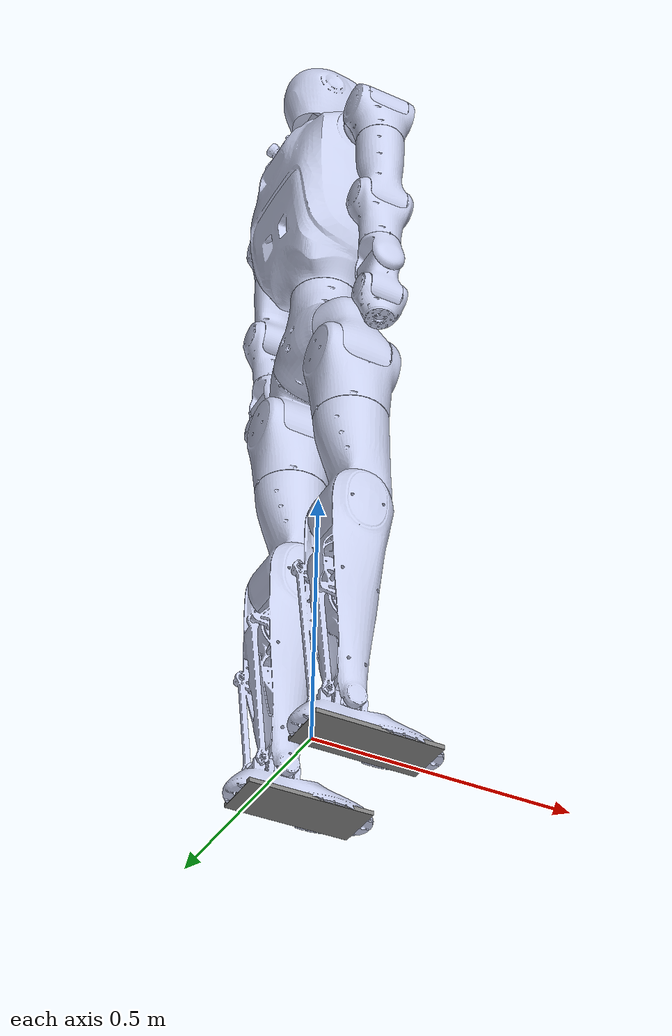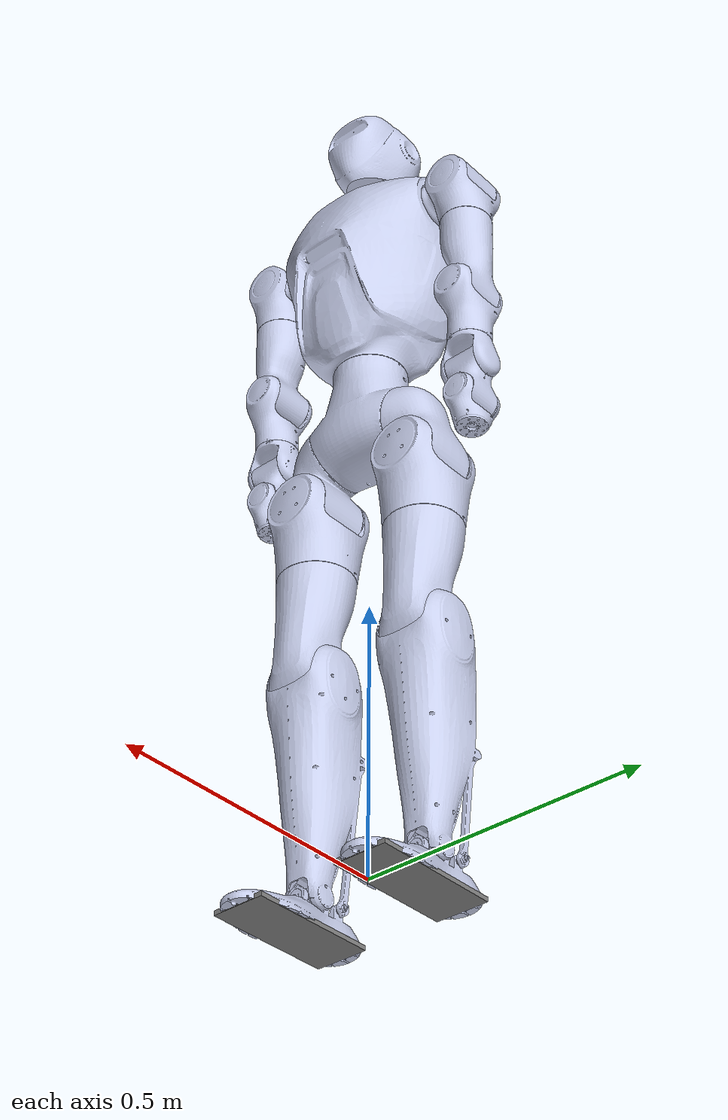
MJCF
<mujoco model="TH010-500 可拖拽外发模型(URDF)20260410">
  <compiler angle="radian" />
  <asset>
    <mesh name="base_hip_link" content_type="model/stl" file="../meshes/base_hip_link.STL" />
    <mesh name="left_hip_pitch_link" content_type="model/stl" file="../meshes/left_hip_pitch_link.STL" />
    <mesh name="left_hip_roll_link" content_type="model/stl" file="../meshes/left_hip_roll_link.STL" />
    <mesh name="left_hip_yaw_link" content_type="model/stl" file="../meshes/left_hip_yaw_link.STL" />
    <mesh name="left_knee_link" content_type="model/stl" file="../meshes/left_knee_link.STL" />
    <mesh name="left_ankle_pitch_link" content_type="model/stl" file="../meshes/left_ankle_pitch_link.STL" />
    <mesh name="left_ankle_roll_link" content_type="model/stl" file="../meshes/left_ankle_roll_link.STL" />
    <mesh name="right_hip_pitch_link" content_type="model/stl" file="../meshes/right_hip_pitch_link.STL" />
    <mesh name="right_hip_roll_link" content_type="model/stl" file="../meshes/right_hip_roll_link.STL" />
    <mesh name="right_hip_yaw_link" content_type="model/stl" file="../meshes/right_hip_yaw_link.STL" />
    <mesh name="right_knee_link" content_type="model/stl" file="../meshes/right_knee_link.STL" />
    <mesh name="right_ankle_pitch_link" content_type="model/stl" file="../meshes/right_ankle_pitch_link.STL" />
    <mesh name="right_ankle_roll_link" content_type="model/stl" file="../meshes/right_ankle_roll_link.STL" />
    <mesh name="waist_yaw_link" content_type="model/stl" file="../meshes/waist_yaw_link.STL" />
    <mesh name="head_yaw_link" content_type="model/stl" file="../meshes/head_yaw_link.STL" />
    <mesh name="head_pitch_link" content_type="model/stl" file="../meshes/head_pitch_link.STL" />
    <mesh name="left_shoulder_pitch_link" content_type="model/stl" file="../meshes/left_shoulder_pitch_link.STL" />
    <mesh name="left_shoulder_roll_link" content_type="model/stl" file="../meshes/left_shoulder_roll_link.STL" />
    <mesh name="left_shoulder_yaw_link" content_type="model/stl" file="../meshes/left_shoulder_yaw_link.STL" />
    <mesh name="left_elbow_link" content_type="model/stl" file="../meshes/left_elbow_link.STL" />
    <mesh name="left_wrist_yaw_link" content_type="model/stl" file="../meshes/left_wrist_yaw_link.STL" />
    <mesh name="left_wrist_pitch_link" content_type="model/stl" file="../meshes/left_wrist_pitch_link.STL" />
    <mesh name="left_wrist_roll_link" content_type="model/stl" file="../meshes/left_wrist_roll_link.STL" />
    <mesh name="right_shoulder_pitch_link" content_type="model/stl" file="../meshes/right_shoulder_pitch_link.STL" />
    <mesh name="right_shoulder_roll_link" content_type="model/stl" file="../meshes/right_shoulder_roll_link.STL" />
    <mesh name="right_shoulder_yaw_link" content_type="model/stl" file="../meshes/right_shoulder_yaw_link.STL" />
    <mesh name="right_elbow_link" content_type="model/stl" file="../meshes/right_elbow_link.STL" />
    <mesh name="right_wrist_yaw_link" content_type="model/stl" file="../meshes/right_wrist_yaw_link.STL" />
    <mesh name="right_wrist_pitch_link" content_type="model/stl" file="../meshes/right_wrist_pitch_link.STL" />
    <mesh name="right_wrist_roll_link" content_type="model/stl" file="../meshes/right_wrist_roll_link.STL" />
    <material name="grey_plastic" rgba="0.79216 0.81961 0.93333 1" />
    <material name="default_material" rgba="0.7 0.7 0.7 1" />
    <material name="collision_material" rgba="1.0 0.28 0.1 0.9" />
  </asset>
  <worldbody>
    <body name="base_hip_link" pos="0.00000000 0.00000000 0.81159019" quat="1 0 0 0">
      <freejoint name="floating_base" />
      <geom type="mesh" rgba="0.79216 0.81961 0.93333 1" mesh="base_hip_link" contype="0" conaffinity="0" />
      <body name="left_hip_pitch_link" pos="0.0021 0.11845 0.025261" quat="0.991445 -0.130526 0 0">
        <inertial pos="0.007814 0.020187 -0.081484" quat="0.706832 0.102853 -0.187116 0.674386" mass="2.852" diaginertia="0.00616865 0.00577245 0.0028269" />
        <joint name="left_hip_pitch_joint" pos="0 0 0" axis="0 1 0" range="-2.094 1.4486" actuatorfrcrange="-240 240" ref="0.0" damping="0.05" armature="0.01" frictionloss="0.2" />
        <geom type="mesh" rgba="0.79216 0.81961 0.93333 1" mesh="left_hip_pitch_link" contype="0" conaffinity="0" />
        <body name="left_hip_roll_link" pos="0 0.025455 -0.095" quat="0.991445 0.130526 0 0">
          <inertial pos="-0.001319 3.4e-05 -0.096883" quat="0.703703 0.0542279 0.0556398 0.706234" mass="3.047" diaginertia="0.00855803 0.0071389 0.00510006" />
          <joint name="left_hip_roll_joint" pos="0 0 0" axis="1 0 0" range="-1.222 1.536" actuatorfrcrange="-240 240" ref="0.0" damping="0.05" armature="0.01" frictionloss="0.2" />
          <geom type="mesh" rgba="0.79216 0.81961 0.93333 1" mesh="left_hip_roll_link" contype="0" conaffinity="0" />
          <body name="left_hip_yaw_link" pos="0 0 -0.1385">
            <inertial pos="0.004891 -0.004006 -0.166637" quat="0.934086 -0.00659501 0.023608 0.356206" mass="3.408" diaginertia="0.0189691 0.0187872 0.00383766" />
            <joint name="left_hip_yaw_joint" pos="0 0 0" axis="0 0 1" range="-0.8378 0.8378" actuatorfrcrange="-240 240" ref="0.0" damping="0.05" armature="0.01" frictionloss="0.2" />
            <geom type="mesh" rgba="0.79216 0.81961 0.93333 1" mesh="left_hip_yaw_link" contype="0" conaffinity="0" />
            <body name="left_knee_link" pos="0 0 -0.21">
              <inertial pos="-0.013728 -0.001138 -0.163269" quat="0.961064 0.0135708 0.0366739 -0.273544" mass="4.461" diaginertia="0.0372391 0.0367241 0.00577385" />
              <joint name="left_knee_joint" pos="0 0 0" axis="0 1 0" range="-0.0873 2.0944" actuatorfrcrange="-204 204" ref="0.0" damping="0.05" armature="0.01" frictionloss="0.2" />
              <geom type="mesh" rgba="0.79216 0.81961 0.93333 1" mesh="left_knee_link" contype="0" conaffinity="0" />
              <body name="left_ankle_pitch_link" pos="0 0 -0.39">
                <inertial pos="0 0 0.001331" quat="0.5 0.5 -0.5 0.5" mass="0.239" diaginertia="9.8e-05 6e-05 6e-05" />
                <joint name="left_ankle_pitch_joint" pos="0 0 0" axis="0 1 0" range="-0.65 0.42" actuatorfrcrange="-104 104" ref="0.0" damping="0.05" armature="0.01" frictionloss="0.2" />
                <geom type="mesh" rgba="0.79216 0.81961 0.93333 1" mesh="left_ankle_pitch_link" contype="0" conaffinity="0" />
                <body name="left_ankle_roll_link">
                  <inertial pos="0.011512 0 -0.038293" quat="0 0.736833 0 0.676075" mass="1.153" diaginertia="0.005445 0.005014 0.000966999" />
                  <joint name="left_ankle_roll_joint" pos="0 0 0" axis="1 0 0" range="-0.1 0.1" actuatorfrcrange="-104 104" ref="0.0" damping="0.05" armature="0.01" frictionloss="0.2" />
                  <geom type="mesh" rgba="0.79216 0.81961 0.93333 1" mesh="left_ankle_roll_link" contype="0" conaffinity="0" />
                  <geom name="left_foot_contact" type="box" size="0.115 0.048 0.004" pos="0.037 0 -0.060" contype="0" conaffinity="1" condim="3" friction="2.0 0.5 0.1" solref="0.005 1" solimp="0.99 0.999 1e-05" group="1" />
                </body>
              </body>
            </body>
          </body>
        </body>
      </body>
      <body name="right_hip_pitch_link" pos="0.0021 -0.11845 0.025261" quat="0.991445 0.130526 0 0">
        <inertial pos="0.007826 -0.020207 -0.081455" quat="0.673714 -0.1877 0.102836 0.707321" mass="2.849" diaginertia="0.00616422 0.00576726 0.00282352" />
        <joint name="right_hip_pitch_joint" pos="0 0 0" axis="0 1 0" range="-2.094 1.4486" actuatorfrcrange="-240 240" ref="0.0" damping="0.05" armature="0.01" frictionloss="0.2" />
        <geom type="mesh" rgba="0.79216 0.81961 0.93333 1" mesh="right_hip_pitch_link" contype="0" conaffinity="0" />
        <body name="right_hip_roll_link" pos="0 -0.025455 -0.095" quat="0.991445 -0.130526 0 0">
          <inertial pos="-0.001319 -2.8e-05 -0.096883" quat="0.706449 0.0557412 0.0541286 0.703486" mass="3.047" diaginertia="0.00855805 0.0071389 0.00510006" />
          <joint name="right_hip_roll_joint" pos="0 0 0" axis="1 0 0" range="-1.536 1.222" actuatorfrcrange="-240 240" ref="0.0" damping="0.05" armature="0.01" frictionloss="0.2" />
          <geom type="mesh" rgba="0.79216 0.81961 0.93333 1" mesh="right_hip_roll_link" contype="0" conaffinity="0" />
          <body name="right_hip_yaw_link" pos="0 0 -0.1385">
            <inertial pos="0.004904 0.004006 -0.166653" quat="0.935017 0.00668372 0.023581 -0.353755" mass="3.408" diaginertia="0.0189803 0.0187981 0.00383563" />
            <joint name="right_hip_yaw_joint" pos="0 0 0" axis="0 0 1" range="-0.8378 0.8378" actuatorfrcrange="-240 240" ref="0.0" damping="0.05" armature="0.01" frictionloss="0.2" />
            <geom type="mesh" rgba="0.79216 0.81961 0.93333 1" mesh="right_hip_yaw_link" contype="0" conaffinity="0" />
            <body name="right_knee_link" pos="0 0 -0.21">
              <inertial pos="-0.01374 0.001133 -0.163265" quat="0.961167 -0.0135158 0.0367313 0.273178" mass="4.461" diaginertia="0.0372421 0.0367244 0.0057755" />
              <joint name="right_knee_joint" pos="0 0 0" axis="0 1 0" range="-0.0873 2.0944" actuatorfrcrange="-240 240" ref="0.0" damping="0.05" armature="0.01" frictionloss="0.2" />
              <geom type="mesh" rgba="0.79216 0.81961 0.93333 1" mesh="right_knee_link" contype="0" conaffinity="0" />
              <body name="right_ankle_pitch_link" pos="0 0 -0.39">
                <inertial pos="0 0 0.001331" quat="0.5 0.5 -0.5 0.5" mass="0.239" diaginertia="9.8e-05 6e-05 6e-05" />
                <joint name="right_ankle_pitch_joint" pos="0 0 0" axis="0 1 0" range="-0.65 0.42" actuatorfrcrange="-104 104" ref="0.0" damping="0.05" armature="0.01" frictionloss="0.2" />
                <geom type="mesh" rgba="0.79216 0.81961 0.93333 1" mesh="right_ankle_pitch_link" contype="0" conaffinity="0" />
                <body name="right_ankle_roll_link">
                  <inertial pos="0.011512 0 -0.038293" quat="0 0.736833 0 0.676075" mass="1.153" diaginertia="0.005445 0.005014 0.000966999" />
                  <joint name="right_ankle_roll_joint" pos="0 0 0" axis="1 0 0" range="-0.1 0.1" actuatorfrcrange="-104 104" ref="0.0" damping="0.05" armature="0.01" frictionloss="0.2" />
                  <geom type="mesh" rgba="0.79216 0.81961 0.93333 1" mesh="right_ankle_roll_link" contype="0" conaffinity="0" />
                  <geom name="right_foot_contact" type="box" size="0.115 0.048 0.004" pos="0.037 0 -0.060" contype="0" conaffinity="1" condim="3" friction="2.0 0.5 0.1" solref="0.005 1" solimp="0.99 0.999 1e-05" group="1" />
                </body>
              </body>
            </body>
          </body>
        </body>
      </body>
      <body name="waist_yaw_link" pos="0.0021 0 0.1925">
        <inertial pos="-0.0189468 0.00011324 0.209733" quat="0.693715 -0.0855718 -0.0852003 0.710054" mass="15.7439" diaginertia="0.316013 0.28994 0.179785" />
        <joint name="waist_yaw_joint" pos="0 0 0" axis="0 0 1" range="-2.8797 2.8797" actuatorfrcrange="-102 102" ref="0.0" damping="0.05" armature="0.01" frictionloss="0.2" />
        <geom type="mesh" rgba="0.79216 0.81961 0.93333 1" mesh="waist_yaw_link" contype="0" conaffinity="0" />
        <body name="head_yaw_link" pos="-0.0247 0 0.4775">
          <inertial pos="0.00023152 -0.00872573 0.0328439" quat="0.838119 0.540723 -0.0557106 0.0455178" mass="0.4466" diaginertia="0.00028215 0.000240544 0.000203006" />
          <joint name="head_yaw_joint" pos="0 0 0" axis="0 0 1" range="-1.6057 1.6057" actuatorfrcrange="-11 11" ref="0.0" damping="0.05" armature="0.01" frictionloss="0.2" />
          <geom type="mesh" rgba="0.79216 0.81961 0.93333 1" mesh="head_yaw_link" contype="0" conaffinity="0" />
          <body name="head_pitch_link" pos="0 0 0.0365">
            <inertial pos="0.0307964 0.00635605 0.0485319" quat="0.469256 0.341238 0.787464 0.207983" mass="0.891379" diaginertia="0.00337254 0.00331903 0.00254932" />
            <joint name="head_pitch_joint" pos="0 0 0" axis="0 1 0" range="-0.2967 0.384" actuatorfrcrange="-11 11" ref="0.0" damping="0.05" armature="0.01" frictionloss="0.2" />
            <geom type="mesh" rgba="0.79216 0.81961 0.93333 1" mesh="head_pitch_link" contype="0" conaffinity="0" />
          </body>
        </body>
        <body name="left_shoulder_pitch_link" pos="0 0.085001 0.323">
          <inertial pos="-0.004429 0.084083 -2.9e-05" quat="0.481514 0.525695 -0.473148 0.51761" mass="2.693" diaginertia="0.00944701 0.0094026 0.00256639" />
          <joint name="left_shoulder_pitch_joint" pos="0 0 0" axis="0 1 0" range="-3.927 1.8326" actuatorfrcrange="-66 66" ref="0.0" damping="0.05" armature="0.01" frictionloss="0.2" />
          <geom type="mesh" rgba="0.79216 0.81961 0.93333 1" mesh="left_shoulder_pitch_link" contype="0" conaffinity="0" />
          <body name="left_shoulder_roll_link" pos="0 0.1355 0">
            <inertial pos="-0.00398 0.003219 -0.03484" quat="0.362926 0.606032 0.577011 0.409962" mass="0.603" diaginertia="0.00201392 0.00158426 0.00131682" />
            <joint name="left_shoulder_roll_joint" pos="0 0 0" axis="1 0 0" range="-0.15708 3.0194" actuatorfrcrange="-66 66" ref="0.0" damping="0.05" armature="0.01" frictionloss="0.2" />
            <geom type="mesh" rgba="0.79216 0.81961 0.93333 1" mesh="left_shoulder_roll_link" contype="0" conaffinity="0" />
            <body name="left_shoulder_yaw_link" pos="0 0.005 -0.085996">
              <inertial pos="-0.010208 0.00089 -0.095454" quat="0.636779 0.0535663 0.0428834 0.767987" mass="1.872" diaginertia="0.0128617 0.0127862 0.00164613" />
              <joint name="left_shoulder_yaw_joint" pos="0 0 0" axis="0 0 1" range="-2.9671 2.9671" actuatorfrcrange="-34 34" ref="0.0" damping="0.05" armature="0.01" frictionloss="0.2" />
              <geom type="mesh" rgba="0.79216 0.81961 0.93333 1" mesh="left_shoulder_yaw_link" contype="0" conaffinity="0" />
              <body name="left_elbow_link" pos="0 0 -0.179">
                <inertial pos="-0.00327666 0.00185412 -0.0647411" quat="0.7069 -0.053915 -0.0253824 0.704798" mass="0.830708" diaginertia="0.00196701 0.00158598 0.000967473" />
                <joint name="left_elbow_joint" pos="0 0 0" axis="1 0 0" range="-2.2515 1.3614" actuatorfrcrange="-34 34" ref="0.0" damping="0.05" armature="0.01" frictionloss="0.2" />
                <geom type="mesh" rgba="0.79216 0.81961 0.93333 1" mesh="left_elbow_link" contype="0" conaffinity="0" />
                <body name="left_wrist_yaw_link" pos="0 0 -0.1165">
                  <inertial pos="4.485e-05 -0.0045302 -0.0259763" quat="0.597482 0.801878 0.00181628 -0.00188584" mass="0.240807" diaginertia="0.000374371 0.000331324 0.000223325" />
                  <joint name="left_wrist_yaw_joint" pos="0 0 0" axis="0 0 1" range="-2.9671 2.9671" actuatorfrcrange="-11 11" ref="0.0" damping="0.05" armature="0.01" frictionloss="0.1" />
                  <geom type="mesh" rgba="0.79216 0.81961 0.93333 1" mesh="left_wrist_yaw_link" contype="0" conaffinity="0" />
                  <body name="left_wrist_pitch_link" pos="0 0 -0.0535">
                    <inertial pos="-0.00179364 -0.00186229 -0.035249" quat="0.999287 0.0266737 0.0253376 0.00852551" mass="1.06555" diaginertia="0.00176404 0.00175623 0.000598974" />
                    <joint name="left_wrist_pitch_joint" pos="0 0 0" axis="0 1 0" range="-1.6581 1.6581" actuatorfrcrange="-11 11" ref="0.0" damping="0.05" armature="0.01" frictionloss="0.1" />
                    <geom type="mesh" rgba="0.79216 0.81961 0.93333 1" mesh="left_wrist_pitch_link" contype="0" conaffinity="0" />
                    <body name="left_wrist_roll_link" pos="0 0 -0.070005">
                      <inertial pos="-0.00573877 2.004e-05 -0.0291827" quat="0.355991 0.611041 0.610364 0.356869" mass="0.213384" diaginertia="0.0003164 0.000254634 0.000172226" />
                      <joint name="left_wrist_roll_joint" pos="0 0 0" axis="1 0 0" range="-1.7453 1.7453" actuatorfrcrange="-11 11" ref="0.0" damping="0.05" armature="0.01" frictionloss="0.1" />
                      <geom type="mesh" rgba="0.79216 0.81961 0.92941 1" mesh="left_wrist_roll_link" contype="0" conaffinity="0" />
                    </body>
                  </body>
                </body>
              </body>
            </body>
          </body>
        </body>
        <body name="right_shoulder_pitch_link" pos="0 -0.085001 0.323">
          <inertial pos="-0.004446 -0.084083 -2.4e-05" quat="0.498027 0.451685 -0.543732 0.5023" mass="2.693" diaginertia="0.00944743 0.00940129 0.00256627" />
          <joint name="right_shoulder_pitch_joint" pos="0 0 0" axis="0 1 0" range="-3.927 1.8326" actuatorfrcrange="-66 66" ref="0.0" damping="0.05" armature="0.01" frictionloss="0.2" />
          <geom type="mesh" rgba="0.79216 0.81961 0.93333 1" mesh="right_shoulder_pitch_link" contype="0" conaffinity="0" />
          <body name="right_shoulder_roll_link" pos="0 -0.1355 0">
            <inertial pos="-0.003973 -0.003239 -0.034846" quat="0.411203 0.576041 0.606059 0.363016" mass="0.603" diaginertia="0.00201407 0.0015834 0.00131752" />
            <joint name="right_shoulder_roll_joint" pos="0 0 0" axis="1 0 0" range="-3.0194 0.15708" actuatorfrcrange="-66 66" ref="0.0" damping="0.05" armature="0.01" frictionloss="0.2" />
            <geom type="mesh" rgba="0.79216 0.81961 0.93333 1" mesh="right_shoulder_roll_link" contype="0" conaffinity="0" />
            <body name="right_shoulder_yaw_link" pos="0 -0.005 -0.085996">
              <inertial pos="-0.01005 -0.000836 -0.095452" quat="0.753279 0.0433974 0.051846 0.654216" mass="1.872" diaginertia="0.0128719 0.0127795 0.00166363" />
              <joint name="right_shoulder_yaw_joint" pos="0 0 0" axis="0 0 1" range="-2.9671 2.9671" actuatorfrcrange="-34 34" ref="0.0" damping="0.05" armature="0.01" frictionloss="0.2" />
              <geom type="mesh" rgba="0.79216 0.81961 0.93333 1" mesh="right_shoulder_yaw_link" contype="0" conaffinity="0" />
              <body name="right_elbow_link" pos="0 0 -0.179">
                <inertial pos="-0.00327933 -0.00181649 -0.0647412" quat="0.704727 -0.0257098 -0.0536688 0.706978" mass="0.830693" diaginertia="0.00196692 0.00158612 0.000967602" />
                <joint name="right_elbow_joint" pos="0 0 0" axis="1 0 0" range="-1.3614 2.2515" actuatorfrcrange="-34 34" ref="0.0" damping="0.05" armature="0.01" frictionloss="0.2" />
                <geom type="mesh" rgba="0.79216 0.81961 0.93333 1" mesh="right_elbow_link" contype="0" conaffinity="0" />
                <body name="right_wrist_yaw_link" pos="0 0 -0.1165">
                  <inertial pos="4.293e-05 0.00451957 -0.0259755" quat="0.802001 0.597316 0.00187604 -0.00190982" mass="0.240797" diaginertia="0.000374351 0.000331355 0.000223273" />
                  <joint name="right_wrist_yaw_joint" pos="0 0 0" axis="0 0 1" range="-2.9671 2.9671" actuatorfrcrange="-11 11" ref="0.0" damping="0.05" armature="0.01" frictionloss="0.1" />
                  <geom type="mesh" rgba="0.79216 0.81961 0.93333 1" mesh="right_wrist_yaw_link" contype="0" conaffinity="0" />
                  <body name="right_wrist_pitch_link" pos="0 0 -0.0535">
                    <inertial pos="-0.00177563 0.00184371 -0.0352516" quat="0.99864 -0.0276227 0.0248069 -0.036604" mass="1.06555" diaginertia="0.0017644 0.00175651 0.000598999" />
                    <joint name="right_wrist_pitch_joint" pos="0 0 0" axis="0 1 0" range="-1.6581 1.6581" actuatorfrcrange="-11 11" ref="0.0" damping="0.05" armature="0.01" frictionloss="0.1" />
                    <geom type="mesh" rgba="0.79216 0.81961 0.93333 1" mesh="right_wrist_pitch_link" contype="0" conaffinity="0" />
                    <body name="right_wrist_roll_link" pos="0 0 -0.070005">
                      <inertial pos="-0.00573877 0 -0.0291827" quat="0.35647 0.6107 0.610704 0.356391" mass="0.213383" diaginertia="0.0003164 0.000254634 0.000172226" />
                      <joint name="right_wrist_roll_joint" pos="0 0 0" axis="1 0 0" range="-1.7453 1.7453" actuatorfrcrange="-11 11" ref="0.0" damping="0.05" armature="0.01" frictionloss="0.1" />
                      <geom type="mesh" rgba="0.79216 0.81961 0.92941 1" mesh="right_wrist_roll_link" contype="0" conaffinity="0" />
                    </body>
                  </body>
                </body>
              </body>
            </body>
          </body>
        </body>
      </body>
      <site name="base_link_site" pos="0 0 0" quat="1 0 0 0" />
      <site name="imu" pos="0 0 0" quat="1 0 0 0" size="0.01" />
      <camera name="front_camera" mode="track" fovy="90.0" quat="4.329780281177467e-17 4.329780281177466e-17 0.7071067811865475 0.7071067811865476" pos="0.0 2.0 0.5" />
      <camera name="side_camera" mode="track" fovy="90.0" quat="-0.5 -0.4999999999999999 0.5 0.5000000000000001" pos="-2.0 0.0 0.5" />
    </body>
  </worldbody>
  <actuator>
    <motor name="left_hip_pitch_joint_ctrl" joint="left_hip_pitch_joint" ctrlrange="-240 240" />
    <motor name="left_hip_roll_joint_ctrl" joint="left_hip_roll_joint" ctrlrange="-240 240" />
    <motor name="left_hip_yaw_joint_ctrl" joint="left_hip_yaw_joint" ctrlrange="-240 240" />
    <motor name="left_knee_joint_ctrl" joint="left_knee_joint" ctrlrange="-204 204" />
    <motor name="left_ankle_pitch_joint_ctrl" joint="left_ankle_pitch_joint" ctrlrange="-104 104" />
    <motor name="left_ankle_roll_joint_ctrl" joint="left_ankle_roll_joint" ctrlrange="-104 104" />
    <motor name="right_hip_pitch_joint_ctrl" joint="right_hip_pitch_joint" ctrlrange="-240 240" />
    <motor name="right_hip_roll_joint_ctrl" joint="right_hip_roll_joint" ctrlrange="-240 240" />
    <motor name="right_hip_yaw_joint_ctrl" joint="right_hip_yaw_joint" ctrlrange="-240 240" />
    <motor name="right_knee_joint_ctrl" joint="right_knee_joint" ctrlrange="-240 240" />
    <motor name="right_ankle_pitch_joint_ctrl" joint="right_ankle_pitch_joint" ctrlrange="-104 104" />
    <motor name="right_ankle_roll_joint_ctrl" joint="right_ankle_roll_joint" ctrlrange="-104 104" />
    <motor name="waist_yaw_joint_ctrl" joint="waist_yaw_joint" ctrlrange="-102 102" />
    <motor name="head_yaw_joint_ctrl" joint="head_yaw_joint" ctrlrange="-11 11" />
    <motor name="head_pitch_joint_ctrl" joint="head_pitch_joint" ctrlrange="-11 11" />
    <motor name="left_shoulder_pitch_joint_ctrl" joint="left_shoulder_pitch_joint" ctrlrange="-66 66" />
    <motor name="left_shoulder_roll_joint_ctrl" joint="left_shoulder_roll_joint" ctrlrange="-66 66" />
    <motor name="left_shoulder_yaw_joint_ctrl" joint="left_shoulder_yaw_joint" ctrlrange="-34 34" />
    <motor name="left_elbow_joint_ctrl" joint="left_elbow_joint" ctrlrange="-34 34" />
    <motor name="left_wrist_yaw_joint_ctrl" joint="left_wrist_yaw_joint" ctrlrange="-11 11" />
    <motor name="left_wrist_pitch_joint_ctrl" joint="left_wrist_pitch_joint" ctrlrange="-11 11" />
    <motor name="left_wrist_roll_joint_ctrl" joint="left_wrist_roll_joint" ctrlrange="-11 11" />
    <motor name="right_shoulder_pitch_joint_ctrl" joint="right_shoulder_pitch_joint" ctrlrange="-66 66" />
    <motor name="right_shoulder_roll_joint_ctrl" joint="right_shoulder_roll_joint" ctrlrange="-66 66" />
    <motor name="right_shoulder_yaw_joint_ctrl" joint="right_shoulder_yaw_joint" ctrlrange="-34 34" />
    <motor name="right_elbow_joint_ctrl" joint="right_elbow_joint" ctrlrange="-34 34" />
    <motor name="right_wrist_yaw_joint_ctrl" joint="right_wrist_yaw_joint" ctrlrange="-11 11" />
    <motor name="right_wrist_pitch_joint_ctrl" joint="right_wrist_pitch_joint" ctrlrange="-11 11" />
    <motor name="right_wrist_roll_joint_ctrl" joint="right_wrist_roll_joint" ctrlrange="-11 11" />
  </actuator>
  <contact>
    <exclude body1="base_hip_link" body2="left_hip_pitch_link" />
    <exclude body1="left_hip_pitch_link" body2="left_hip_roll_link" />
    <exclude body1="left_hip_roll_link" body2="left_hip_yaw_link" />
    <exclude body1="left_hip_yaw_link" body2="left_knee_link" />
    <exclude body1="left_knee_link" body2="left_ankle_pitch_link" />
    <exclude body1="left_ankle_pitch_link" body2="left_ankle_roll_link" />
    <exclude body1="base_hip_link" body2="right_hip_pitch_link" />
    <exclude body1="right_hip_pitch_link" body2="right_hip_roll_link" />
    <exclude body1="right_hip_roll_link" body2="right_hip_yaw_link" />
    <exclude body1="right_hip_yaw_link" body2="right_knee_link" />
    <exclude body1="right_knee_link" body2="right_ankle_pitch_link" />
    <exclude body1="right_ankle_pitch_link" body2="right_ankle_roll_link" />
    <exclude body1="base_hip_link" body2="waist_yaw_link" />
    <exclude body1="waist_yaw_link" body2="head_yaw_link" />
    <exclude body1="head_yaw_link" body2="head_pitch_link" />
    <exclude body1="waist_yaw_link" body2="left_shoulder_pitch_link" />
    <exclude body1="left_shoulder_pitch_link" body2="left_shoulder_roll_link" />
    <exclude body1="left_shoulder_roll_link" body2="left_shoulder_yaw_link" />
    <exclude body1="left_shoulder_yaw_link" body2="left_elbow_link" />
    <exclude body1="left_elbow_link" body2="left_wrist_yaw_link" />
    <exclude body1="left_wrist_yaw_link" body2="left_wrist_pitch_link" />
    <exclude body1="left_wrist_pitch_link" body2="left_wrist_roll_link" />
    <exclude body1="waist_yaw_link" body2="right_shoulder_pitch_link" />
    <exclude body1="right_shoulder_pitch_link" body2="right_shoulder_roll_link" />
    <exclude body1="right_shoulder_roll_link" body2="right_shoulder_yaw_link" />
    <exclude body1="right_shoulder_yaw_link" body2="right_elbow_link" />
    <exclude body1="right_elbow_link" body2="right_wrist_yaw_link" />
    <exclude body1="right_wrist_yaw_link" body2="right_wrist_pitch_link" />
    <exclude body1="right_wrist_pitch_link" body2="right_wrist_roll_link" />
  </contact>
  <sensor>
    <!-- Motor position sensors: sensordata[0..28] -->
    <jointpos name="left_hip_pitch_joint_pos" joint="left_hip_pitch_joint" />
    <jointpos name="left_hip_roll_joint_pos" joint="left_hip_roll_joint" />
    <jointpos name="left_hip_yaw_joint_pos" joint="left_hip_yaw_joint" />
    <jointpos name="left_knee_joint_pos" joint="left_knee_joint" />
    <jointpos name="left_ankle_pitch_joint_pos" joint="left_ankle_pitch_joint" />
    <jointpos name="left_ankle_roll_joint_pos" joint="left_ankle_roll_joint" />
    <jointpos name="right_hip_pitch_joint_pos" joint="right_hip_pitch_joint" />
    <jointpos name="right_hip_roll_joint_pos" joint="right_hip_roll_joint" />
    <jointpos name="right_hip_yaw_joint_pos" joint="right_hip_yaw_joint" />
    <jointpos name="right_knee_joint_pos" joint="right_knee_joint" />
    <jointpos name="right_ankle_pitch_joint_pos" joint="right_ankle_pitch_joint" />
    <jointpos name="right_ankle_roll_joint_pos" joint="right_ankle_roll_joint" />
    <jointpos name="waist_yaw_joint_pos" joint="waist_yaw_joint" />
    <jointpos name="head_yaw_joint_pos" joint="head_yaw_joint" />
    <jointpos name="head_pitch_joint_pos" joint="head_pitch_joint" />
    <jointpos name="left_shoulder_pitch_joint_pos" joint="left_shoulder_pitch_joint" />
    <jointpos name="left_shoulder_roll_joint_pos" joint="left_shoulder_roll_joint" />
    <jointpos name="left_shoulder_yaw_joint_pos" joint="left_shoulder_yaw_joint" />
    <jointpos name="left_elbow_joint_pos" joint="left_elbow_joint" />
    <jointpos name="left_wrist_yaw_joint_pos" joint="left_wrist_yaw_joint" />
    <jointpos name="left_wrist_pitch_joint_pos" joint="left_wrist_pitch_joint" />
    <jointpos name="left_wrist_roll_joint_pos" joint="left_wrist_roll_joint" />
    <jointpos name="right_shoulder_pitch_joint_pos" joint="right_shoulder_pitch_joint" />
    <jointpos name="right_shoulder_roll_joint_pos" joint="right_shoulder_roll_joint" />
    <jointpos name="right_shoulder_yaw_joint_pos" joint="right_shoulder_yaw_joint" />
    <jointpos name="right_elbow_joint_pos" joint="right_elbow_joint" />
    <jointpos name="right_wrist_yaw_joint_pos" joint="right_wrist_yaw_joint" />
    <jointpos name="right_wrist_pitch_joint_pos" joint="right_wrist_pitch_joint" />
    <jointpos name="right_wrist_roll_joint_pos" joint="right_wrist_roll_joint" />
    <!-- Motor velocity sensors: sensordata[29..57] -->
    <jointvel name="left_hip_pitch_joint_vel" joint="left_hip_pitch_joint" />
    <jointvel name="left_hip_roll_joint_vel" joint="left_hip_roll_joint" />
    <jointvel name="left_hip_yaw_joint_vel" joint="left_hip_yaw_joint" />
    <jointvel name="left_knee_joint_vel" joint="left_knee_joint" />
    <jointvel name="left_ankle_pitch_joint_vel" joint="left_ankle_pitch_joint" />
    <jointvel name="left_ankle_roll_joint_vel" joint="left_ankle_roll_joint" />
    <jointvel name="right_hip_pitch_joint_vel" joint="right_hip_pitch_joint" />
    <jointvel name="right_hip_roll_joint_vel" joint="right_hip_roll_joint" />
    <jointvel name="right_hip_yaw_joint_vel" joint="right_hip_yaw_joint" />
    <jointvel name="right_knee_joint_vel" joint="right_knee_joint" />
    <jointvel name="right_ankle_pitch_joint_vel" joint="right_ankle_pitch_joint" />
    <jointvel name="right_ankle_roll_joint_vel" joint="right_ankle_roll_joint" />
    <jointvel name="waist_yaw_joint_vel" joint="waist_yaw_joint" />
    <jointvel name="head_yaw_joint_vel" joint="head_yaw_joint" />
    <jointvel name="head_pitch_joint_vel" joint="head_pitch_joint" />
    <jointvel name="left_shoulder_pitch_joint_vel" joint="left_shoulder_pitch_joint" />
    <jointvel name="left_shoulder_roll_joint_vel" joint="left_shoulder_roll_joint" />
    <jointvel name="left_shoulder_yaw_joint_vel" joint="left_shoulder_yaw_joint" />
    <jointvel name="left_elbow_joint_vel" joint="left_elbow_joint" />
    <jointvel name="left_wrist_yaw_joint_vel" joint="left_wrist_yaw_joint" />
    <jointvel name="left_wrist_pitch_joint_vel" joint="left_wrist_pitch_joint" />
    <jointvel name="left_wrist_roll_joint_vel" joint="left_wrist_roll_joint" />
    <jointvel name="right_shoulder_pitch_joint_vel" joint="right_shoulder_pitch_joint" />
    <jointvel name="right_shoulder_roll_joint_vel" joint="right_shoulder_roll_joint" />
    <jointvel name="right_shoulder_yaw_joint_vel" joint="right_shoulder_yaw_joint" />
    <jointvel name="right_elbow_joint_vel" joint="right_elbow_joint" />
    <jointvel name="right_wrist_yaw_joint_vel" joint="right_wrist_yaw_joint" />
    <jointvel name="right_wrist_pitch_joint_vel" joint="right_wrist_pitch_joint" />
    <jointvel name="right_wrist_roll_joint_vel" joint="right_wrist_roll_joint" />
    <!-- Motor torque sensors: sensordata[58..86] -->
    <jointactuatorfrc name="left_hip_pitch_torque" joint="left_hip_pitch_joint" />
    <jointactuatorfrc name="left_hip_roll_torque" joint="left_hip_roll_joint" />
    <jointactuatorfrc name="left_hip_yaw_torque" joint="left_hip_yaw_joint" />
    <jointactuatorfrc name="left_knee_torque" joint="left_knee_joint" />
    <jointactuatorfrc name="left_ankle_pitch_torque" joint="left_ankle_pitch_joint" />
    <jointactuatorfrc name="left_ankle_roll_torque" joint="left_ankle_roll_joint" />
    <jointactuatorfrc name="right_hip_pitch_torque" joint="right_hip_pitch_joint" />
    <jointactuatorfrc name="right_hip_roll_torque" joint="right_hip_roll_joint" />
    <jointactuatorfrc name="right_hip_yaw_torque" joint="right_hip_yaw_joint" />
    <jointactuatorfrc name="right_knee_torque" joint="right_knee_joint" />
    <jointactuatorfrc name="right_ankle_pitch_torque" joint="right_ankle_pitch_joint" />
    <jointactuatorfrc name="right_ankle_roll_torque" joint="right_ankle_roll_joint" />
    <jointactuatorfrc name="waist_yaw_torque" joint="waist_yaw_joint" />
    <jointactuatorfrc name="head_yaw_torque" joint="head_yaw_joint" />
    <jointactuatorfrc name="head_pitch_torque" joint="head_pitch_joint" />
    <jointactuatorfrc name="left_shoulder_pitch_torque" joint="left_shoulder_pitch_joint" />
    <jointactuatorfrc name="left_shoulder_roll_torque" joint="left_shoulder_roll_joint" />
    <jointactuatorfrc name="left_shoulder_yaw_torque" joint="left_shoulder_yaw_joint" />
    <jointactuatorfrc name="left_elbow_torque" joint="left_elbow_joint" />
    <jointactuatorfrc name="left_wrist_yaw_torque" joint="left_wrist_yaw_joint" />
    <jointactuatorfrc name="left_wrist_pitch_torque" joint="left_wrist_pitch_joint" />
    <jointactuatorfrc name="left_wrist_roll_torque" joint="left_wrist_roll_joint" />
    <jointactuatorfrc name="right_shoulder_pitch_torque" joint="right_shoulder_pitch_joint" />
    <jointactuatorfrc name="right_shoulder_roll_torque" joint="right_shoulder_roll_joint" />
    <jointactuatorfrc name="right_shoulder_yaw_torque" joint="right_shoulder_yaw_joint" />
    <jointactuatorfrc name="right_elbow_torque" joint="right_elbow_joint" />
    <jointactuatorfrc name="right_wrist_yaw_torque" joint="right_wrist_yaw_joint" />
    <jointactuatorfrc name="right_wrist_pitch_torque" joint="right_wrist_pitch_joint" />
    <jointactuatorfrc name="right_wrist_roll_torque" joint="right_wrist_roll_joint" />
    <!-- IMU sensors (named for bridge lookup) -->
    <framequat name="imu_quat" objtype="site" objname="imu" />
    <gyro name="imu_gyro" site="imu" />
    <accelerometer name="imu_acc" site="imu" />
    <!-- Frame position/velocity sensors -->
    <framepos name="frame_pos" objtype="site" objname="imu" />
    <framelinvel name="frame_vel" objtype="site" objname="imu" />
  </sensor>
</mujoco>
